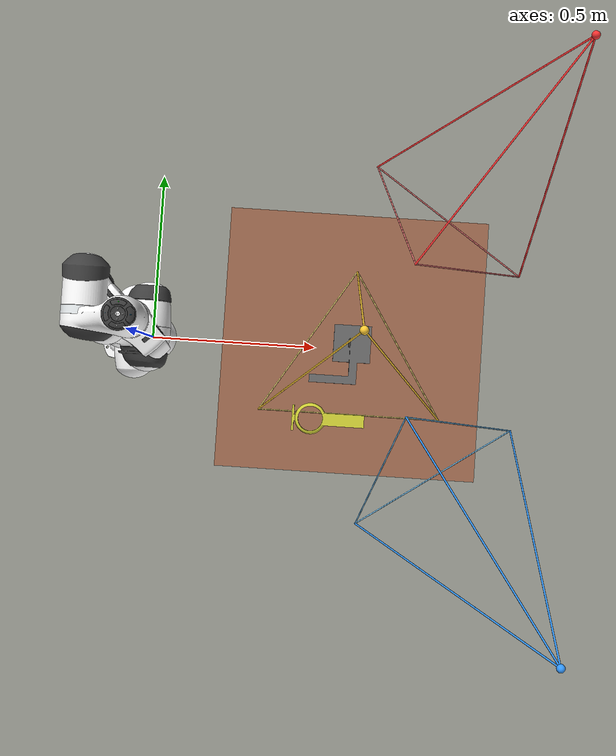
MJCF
<?xml version="1.0" ?>
<mujoco model="panda">

  <compiler angle="radian" meshdir="franka_emika_panda/assets"/>

  <default>

    <default class="panda">

      <material shininess="0.25"/>

      <joint range="-2.8973 2.8973" armature="0.1" damping="1"/>

      <general ctrlrange="-2.8973 2.8973" forcerange="-100 100" biastype="affine" biasprm="0 -1"/>

      <default class="finger">

        <joint type="slide" range="0 0.04"/>

      </default>

      <default class="visual">

        <geom type="mesh" contype="0" conaffinity="0" group="2"/>

      </default>

      <default class="collision">

        <geom type="mesh" contype="1" conaffinity="1" group="3"/>

        <default class="primitive_collision">

          <geom type="box" solref="0.01" solimp="0.99 0.995 0.01"/>

          <default class="fingertip_pad_collision_1">

            <geom size="0.011 0.0075 0.01"/>

          </default>

          <default class="fingertip_pad_collision_2">

            <geom size="0.011 0.0044 0.0019"/>

          </default>

          <default class="fingertip_pad_collision_3">

            <geom size="0.00875 0.0035 0.01175"/>

          </default>

          <default class="fingertip_pad_collision_4">

            <geom size="0.00875 0.0076 0.00825" conaffinity="3"/>

          </default>

        </default>

      </default>

    </default>

  </default>

  <asset>

    <material name="white" class="panda"/>

    <material name="off_white" class="panda" rgba="0.901961 0.921569 0.929412 1"/>

    <material name="black" class="panda" rgba="0.25 0.25 0.25 1"/>

    <material name="green" class="panda" rgba="0 1 0 1"/>

    <material name="light_blue" class="panda" rgba="0.039216 0.541176 0.780392 1"/>

    <mesh name="maze_mesh" content_type="model/obj" file="Basic_Model_EUD-Body.obj" scale="0.001 0.001 0.001"/>

    <mesh name="stick_mesh" content_type="model/obj" file="Basic_Holder_Model_EUD-Body001.obj" scale="0.001 0.001 0.001"/>

    <mesh name="link0_c" content_type="model/stl" file="link0.stl"/>

    <mesh name="link1_c" content_type="model/stl" file="link1.stl"/>

    <mesh name="link2_c" content_type="model/stl" file="link2.stl"/>

    <mesh name="link3_c" content_type="model/stl" file="link3.stl"/>

    <mesh name="link4_c" content_type="model/stl" file="link4.stl"/>

    <mesh name="link5_c0" content_type="model/obj" file="link5_collision_0.obj"/>

    <mesh name="link5_c1" content_type="model/obj" file="link5_collision_1.obj"/>

    <mesh name="link5_c2" content_type="model/obj" file="link5_collision_2.obj"/>

    <mesh name="link6_c" content_type="model/stl" file="link6.stl"/>

    <mesh name="link7_c" content_type="model/stl" file="link7.stl"/>

    <mesh name="hand_c" content_type="model/stl" file="hand.stl"/>

    <mesh name="link0_0" content_type="model/obj" file="link0_0.obj"/>

    <mesh name="link0_1" content_type="model/obj" file="link0_1.obj"/>

    <mesh name="link0_2" content_type="model/obj" file="link0_2.obj"/>

    <mesh name="link0_3" content_type="model/obj" file="link0_3.obj"/>

    <mesh name="link0_4" content_type="model/obj" file="link0_4.obj"/>

    <mesh name="link0_5" content_type="model/obj" file="link0_5.obj"/>

    <mesh name="link0_7" content_type="model/obj" file="link0_7.obj"/>

    <mesh name="link0_8" content_type="model/obj" file="link0_8.obj"/>

    <mesh name="link0_9" content_type="model/obj" file="link0_9.obj"/>

    <mesh name="link0_10" content_type="model/obj" file="link0_10.obj"/>

    <mesh name="link0_11" content_type="model/obj" file="link0_11.obj"/>

    <mesh name="link1" content_type="model/obj" file="link1.obj"/>

    <mesh name="link2" content_type="model/obj" file="link2.obj"/>

    <mesh name="link3_0" content_type="model/obj" file="link3_0.obj"/>

    <mesh name="link3_1" content_type="model/obj" file="link3_1.obj"/>

    <mesh name="link3_2" content_type="model/obj" file="link3_2.obj"/>

    <mesh name="link3_3" content_type="model/obj" file="link3_3.obj"/>

    <mesh name="link4_0" content_type="model/obj" file="link4_0.obj"/>

    <mesh name="link4_1" content_type="model/obj" file="link4_1.obj"/>

    <mesh name="link4_2" content_type="model/obj" file="link4_2.obj"/>

    <mesh name="link4_3" content_type="model/obj" file="link4_3.obj"/>

    <mesh name="link5_0" content_type="model/obj" file="link5_0.obj"/>

    <mesh name="link5_1" content_type="model/obj" file="link5_1.obj"/>

    <mesh name="link5_2" content_type="model/obj" file="link5_2.obj"/>

    <mesh name="link6_0" content_type="model/obj" file="link6_0.obj"/>

    <mesh name="link6_1" content_type="model/obj" file="link6_1.obj"/>

    <mesh name="link6_2" content_type="model/obj" file="link6_2.obj"/>

    <mesh name="link6_3" content_type="model/obj" file="link6_3.obj"/>

    <mesh name="link6_4" content_type="model/obj" file="link6_4.obj"/>

    <mesh name="link6_5" content_type="model/obj" file="link6_5.obj"/>

    <mesh name="link6_6" content_type="model/obj" file="link6_6.obj"/>

    <mesh name="link6_7" content_type="model/obj" file="link6_7.obj"/>

    <mesh name="link6_8" content_type="model/obj" file="link6_8.obj"/>

    <mesh name="link6_9" content_type="model/obj" file="link6_9.obj"/>

    <mesh name="link6_10" content_type="model/obj" file="link6_10.obj"/>

    <mesh name="link6_11" content_type="model/obj" file="link6_11.obj"/>

    <mesh name="link6_12" content_type="model/obj" file="link6_12.obj"/>

    <mesh name="link6_13" content_type="model/obj" file="link6_13.obj"/>

    <mesh name="link6_14" content_type="model/obj" file="link6_14.obj"/>

    <mesh name="link6_15" content_type="model/obj" file="link6_15.obj"/>

    <mesh name="link6_16" content_type="model/obj" file="link6_16.obj"/>

    <mesh name="link7_0" content_type="model/obj" file="link7_0.obj"/>

    <mesh name="link7_1" content_type="model/obj" file="link7_1.obj"/>

    <mesh name="link7_2" content_type="model/obj" file="link7_2.obj"/>

    <mesh name="link7_3" content_type="model/obj" file="link7_3.obj"/>

    <mesh name="link7_4" content_type="model/obj" file="link7_4.obj"/>

    <mesh name="link7_5" content_type="model/obj" file="link7_5.obj"/>

    <mesh name="link7_6" content_type="model/obj" file="link7_6.obj"/>

    <mesh name="link7_7" content_type="model/obj" file="link7_7.obj"/>

    <mesh name="hand_0" content_type="model/obj" file="hand_0.obj"/>

    <mesh name="hand_1" content_type="model/obj" file="hand_1.obj"/>

    <mesh name="hand_2" content_type="model/obj" file="hand_2.obj"/>

    <mesh name="hand_3" content_type="model/obj" file="hand_3.obj"/>

    <mesh name="hand_4" content_type="model/obj" file="hand_4.obj"/>

    <mesh name="finger_0" content_type="model/obj" file="finger_0.obj"/>

    <mesh name="finger_1" content_type="model/obj" file="finger_1.obj"/>

  </asset>

  <worldbody>

    <body name="maze" pos="0.6 0 0.425">

      <geom name="maze_visual" type="mesh" mesh="maze_mesh" rgba="0.4 0.4 0.4 1" contype="0" conaffinity="0" group="2" mass="0"/>

      <geom name="maze_collision" type="mesh" mesh="maze_mesh" rgba="0 0 1 0" contype="1" conaffinity="1" friction="1.0 0.005 0.0001" solref="0.02 1" solimp="0.95 0.99 0.001" margin="0.004" group="3"/>

    </body>

    <body name="stick" pos="0.5 -0.2 0.70">

      <joint name="stick_free" type="free"/>

      <geom name="stick_visual" type="mesh" mesh="stick_mesh" rgba="0.8 0.8 0.2 1" contype="0" conaffinity="0" group="2" mass="0"/>

      <geom name="stick_collision" type="capsule" fromto="-0.15 0 0  0.15 0 0" size="0.01" rgba="0 0 0 0" contype="1" conaffinity="1" friction="1.2 0.01 0.0001" solref="0.01 1" solimp="0.9 0.95 0.001" margin="0.002" mass="0.2" group="3"/>

    </body>

    <geom name="ground_collision" type="plane" size="2 2 0.1" pos="0 0 0" rgba="0 0 0 0" group="3" friction="1 0.005 0.0001" solref="0.02 1" solimp="0.9 0.95 0.001"/>

    <geom name="ground_visual" type="plane" size="2 2 0.1" pos="0 0 0" rgba="0.3 0.3 0.3 1" contype="0" conaffinity="0" group="9" mass="0"/>

    <body name="table" pos="0.6 0 0.4">

      <geom type="box" size="0.35 0.35 0.02" rgba="0 0 0 0" friction="1.2 0.01 0.0001" solref="0.02 1" solimp="0.9 0.95 0.001" margin="0.002" group="3" name="table_collision"/>

      <geom type="box" size="0.35 0.35 0.02" rgba="0.6 0.4 0.3 1" contype="0" conaffinity="0" margin="0.002" group="2" mass="0" name="table_visual"/>

    </body>

    <camera name="overhead" pos="0.6 0 1.2" xyaxes="1 0 0 0 1 0"/>

    <camera name="top" pos="0.6 0 1.1" xyaxes="1 0 0 0 1 0"/>

    <camera name="front" pos="1.32 0 1.04" xyaxes="0 1 0 -0.570396 0 0.82137"/>

    <camera name="right" pos="1.08 0.7 0.96" xyaxes="-0.824729 0.565528 0 -0.287044 -0.418606 0.861611"/>

    <camera name="left" pos="1.08 -0.7 0.96" xyaxes="0.824729 0.565528 0 -0.287044 0.418606 0.861611"/>

    <!-- Top camera prism marker -->
    <geom name="camviz_top_origin" type="sphere" size="0.01" pos="0.6 0 1.1"
          rgba="1 0.8 0.2 1" contype="0" conaffinity="0" group="2"/>
    <geom name="camviz_top_ray_top" type="capsule" size="0.0022"
          fromto="0.6 0 1.1 0.6 0.189553 0.48"
          rgba="1 0.8 0.2 1" contype="0" conaffinity="0" group="2"/>
    <geom name="camviz_top_ray_bl" type="capsule" size="0.0022"
          fromto="0.6 0 1.1 0.362004 -0.189553 0.48"
          rgba="1 0.8 0.2 1" contype="0" conaffinity="0" group="2"/>
    <geom name="camviz_top_ray_br" type="capsule" size="0.0022"
          fromto="0.6 0 1.1 0.837996 -0.189553 0.48"
          rgba="1 0.8 0.2 1" contype="0" conaffinity="0" group="2"/>
    <geom name="camviz_top_edge1" type="capsule" size="0.0018"
          fromto="0.6 0.189553 0.48 0.362004 -0.189553 0.48"
          rgba="1 0.9 0.5 1" contype="0" conaffinity="0" group="2"/>
    <geom name="camviz_top_edge2" type="capsule" size="0.0018"
          fromto="0.362004 -0.189553 0.48 0.837996 -0.189553 0.48"
          rgba="1 0.9 0.5 1" contype="0" conaffinity="0" group="2"/>
    <geom name="camviz_top_edge3" type="capsule" size="0.0018"
          fromto="0.837996 -0.189553 0.48 0.6 0.189553 0.48"
          rgba="1 0.9 0.5 1" contype="0" conaffinity="0" group="2"/>

    <!-- Camera frustum markers (triangular prism style) for top/left/right coverage debugging -->
    <geom name="camviz_right_origin" type="sphere" size="0.01" pos="1.08 0.7 0.96"
          rgba="1 0.2 0.2 1" contype="0" conaffinity="0" group="2"/>
    <geom name="camviz_right_ray_top" type="capsule" size="0.0022"
          fromto="1.08 0.7 0.96 0.723485 0.180082 0.808629"
          rgba="1 0.2 0.2 1" contype="0" conaffinity="0" group="2"/>
    <geom name="camviz_right_ray_bl" type="capsule" size="0.0022"
          fromto="1.08 0.7 0.96 1.028587 0.204185 0.481987"
          rgba="1 0.2 0.2 1" contype="0" conaffinity="0" group="2"/>
    <geom name="camviz_right_ray_br" type="capsule" size="0.0022"
          fromto="1.08 0.7 0.96 0.636023 0.473372 0.481987"
          rgba="1 0.2 0.2 1" contype="0" conaffinity="0" group="2"/>
    <geom name="camviz_right_edge1" type="capsule" size="0.0018"
          fromto="0.723485 0.180082 0.808629 1.028587 0.204185 0.481987"
          rgba="1 0.5 0.5 1" contype="0" conaffinity="0" group="2"/>
    <geom name="camviz_right_edge2" type="capsule" size="0.0018"
          fromto="1.028587 0.204185 0.481987 0.636023 0.473372 0.481987"
          rgba="1 0.5 0.5 1" contype="0" conaffinity="0" group="2"/>
    <geom name="camviz_right_edge3" type="capsule" size="0.0018"
          fromto="0.636023 0.473372 0.481987 0.723485 0.180082 0.808629"
          rgba="1 0.5 0.5 1" contype="0" conaffinity="0" group="2"/>

    <geom name="camviz_left_origin" type="sphere" size="0.01" pos="1.08 -0.7 0.96"
          rgba="0.2 0.6 1 1" contype="0" conaffinity="0" group="2"/>
    <geom name="camviz_left_ray_top" type="capsule" size="0.0022"
          fromto="1.08 -0.7 0.96 0.723485 -0.180082 0.808629"
          rgba="0.2 0.6 1 1" contype="0" conaffinity="0" group="2"/>
    <geom name="camviz_left_ray_bl" type="capsule" size="0.0022"
          fromto="1.08 -0.7 0.96 0.636023 -0.473372 0.481987"
          rgba="0.2 0.6 1 1" contype="0" conaffinity="0" group="2"/>
    <geom name="camviz_left_ray_br" type="capsule" size="0.0022"
          fromto="1.08 -0.7 0.96 1.028587 -0.204185 0.481987"
          rgba="0.2 0.6 1 1" contype="0" conaffinity="0" group="2"/>
    <geom name="camviz_left_edge1" type="capsule" size="0.0018"
          fromto="0.723485 -0.180082 0.808629 0.636023 -0.473372 0.481987"
          rgba="0.5 0.8 1 1" contype="0" conaffinity="0" group="2"/>
    <geom name="camviz_left_edge2" type="capsule" size="0.0018"
          fromto="0.636023 -0.473372 0.481987 1.028587 -0.204185 0.481987"
          rgba="0.5 0.8 1 1" contype="0" conaffinity="0" group="2"/>
    <geom name="camviz_left_edge3" type="capsule" size="0.0018"
          fromto="1.028587 -0.204185 0.481987 0.723485 -0.180082 0.808629"
          rgba="0.5 0.8 1 1" contype="0" conaffinity="0" group="2"/>

    <light name="top" pos="0 0 2" dir="0 0 -1" mode="trackcom"/>

    <body name="link0" childclass="panda">

      <inertial pos="-0.041018 -0.00014 0.049974" quat="0.00630474 0.751245 0.00741774 0.659952" mass="0.629769" diaginertia="0.00430465 0.00387984 0.00313051"/>

      <geom class="visual" material="off_white" mesh="link0_0"/>

      <geom class="visual" material="black" mesh="link0_1"/>

      <geom class="visual" material="off_white" mesh="link0_2"/>

      <geom class="visual" material="black" mesh="link0_3"/>

      <geom class="visual" material="off_white" mesh="link0_4"/>

      <geom class="visual" material="black" mesh="link0_5"/>

      <geom class="visual" material="white" mesh="link0_7"/>

      <geom class="visual" material="white" mesh="link0_8"/>

      <geom class="visual" material="black" mesh="link0_9"/>

      <geom class="visual" material="off_white" mesh="link0_10"/>

      <geom class="visual" material="white" mesh="link0_11"/>

      <geom class="collision" mesh="link0_c"/>

      <body name="link1" pos="0 0 0.333">

        <inertial pos="0.003875 0.002081 -0.04762" quat="0.711549 0.00634377 -0.0131124 0.702485" mass="4.97068" diaginertia="0.707137 0.703435 0.00852456"/>

        <joint name="joint1" pos="0 0 0" axis="0 0 1" damping="40"/>

        <geom class="visual" material="white" mesh="link1"/>

        <geom class="collision" mesh="link1_c"/>

        <body name="link2" quat="0.707107 -0.707107 0 0">

          <inertial pos="-0.003141 -0.02872 0.003495" quat="-0.168175 0.828366 -0.122878 0.520027" mass="0.646926" diaginertia="0.0310326 0.0283001 0.00273425"/>

          <joint name="joint2" pos="0 0 0" axis="0 0 1" range="-1.7628 1.7628" damping="40"/>

          <geom class="visual" material="white" mesh="link2"/>

          <geom class="collision" mesh="link2_c"/>

          <body name="link3" pos="0 -0.316 0" quat="0.707107 0.707107 0 0">

            <inertial pos="0.027518 0.039252 -0.066502" quat="0.662769 -0.00678331 0.252053 0.705096" mass="3.2286" diaginertia="0.0415014 0.0414793 0.00124635"/>

            <joint name="joint3" pos="0 0 0" axis="0 0 1" damping="40"/>

            <geom class="visual" material="white" mesh="link3_0"/>

            <geom class="visual" material="white" mesh="link3_1"/>

            <geom class="visual" material="white" mesh="link3_2"/>

            <geom class="visual" material="black" mesh="link3_3"/>

            <geom class="collision" mesh="link3_c"/>

            <body name="link4" pos="0.0825 0 0" quat="0.707107 0.707107 0 0">

              <inertial pos="-0.05317 0.104419 0.027454" quat="0.65058 0.529822 -0.0962034 0.535518" mass="3.5879" diaginertia="0.0349596 0.0281483 0.0106201"/>

              <joint name="joint4" pos="0 0 0" axis="0 0 1" range="-3.0718 -0.0698" damping="40"/>

              <geom class="visual" material="white" mesh="link4_0"/>

              <geom class="visual" material="white" mesh="link4_1"/>

              <geom class="visual" material="black" mesh="link4_2"/>

              <geom class="visual" material="white" mesh="link4_3"/>

              <geom class="collision" mesh="link4_c"/>

              <body name="link5" pos="-0.0825 0.384 0" quat="0.707107 -0.707107 0 0">

                <inertial pos="-0.011953 0.041065 -0.038437" quat="0.987313 -0.0121954 0.0719187 -0.141037" mass="1.22595" diaginertia="0.0367625 0.0288531 0.00803437"/>

                <joint name="joint5" pos="0 0 0" axis="0 0 1" damping="2"/>

                <geom class="visual" material="black" mesh="link5_0"/>

                <geom class="visual" material="white" mesh="link5_1"/>

                <geom class="visual" material="white" mesh="link5_2"/>

                <geom class="collision" mesh="link5_c0"/>

                <geom class="collision" mesh="link5_c1"/>

                <geom class="collision" mesh="link5_c2"/>

                <body name="link6" quat="0.707107 0.707107 0 0">

                  <inertial pos="0.060149 -0.014117 -0.010517" quat="0.101075 0.59332 0.0287227 0.798079" mass="1.66656" diaginertia="0.00584276 0.00431037 0.00159787"/>

                  <joint name="joint6" pos="0 0 0" axis="0 0 1" range="-0.0175 3.7525" damping="2"/>

                  <geom class="visual" material="off_white" mesh="link6_0"/>

                  <geom class="visual" material="white" mesh="link6_1"/>

                  <geom class="visual" material="black" mesh="link6_2"/>

                  <geom class="visual" material="white" mesh="link6_3"/>

                  <geom class="visual" material="white" mesh="link6_4"/>

                  <geom class="visual" material="white" mesh="link6_5"/>

                  <geom class="visual" material="white" mesh="link6_6"/>

                  <geom class="visual" material="light_blue" mesh="link6_7"/>

                  <geom class="visual" material="light_blue" mesh="link6_8"/>

                  <geom class="visual" material="black" mesh="link6_9"/>

                  <geom class="visual" material="black" mesh="link6_10"/>

                  <geom class="visual" material="white" mesh="link6_11"/>

                  <geom class="visual" material="green" mesh="link6_12"/>

                  <geom class="visual" material="white" mesh="link6_13"/>

                  <geom class="visual" material="black" mesh="link6_14"/>

                  <geom class="visual" material="black" mesh="link6_15"/>

                  <geom class="visual" material="white" mesh="link6_16"/>

                  <geom class="collision" mesh="link6_c"/>

                  <body name="link7" pos="0.088 0 0" quat="0.707107 0.707107 0 0">

                    <inertial pos="0.010517 -0.004252 0.061597" quat="0.992939 -0.0762041 0.0733595 -0.0537067" mass="0.735522" diaginertia="0.0127345 0.0101055 0.00451803"/>

                    <joint name="joint7" pos="0 0 0" axis="0 0 1" damping="2"/>

                    <geom class="visual" material="white" mesh="link7_0"/>

                    <geom class="visual" material="black" mesh="link7_1"/>

                    <geom class="visual" material="black" mesh="link7_2"/>

                    <geom class="visual" material="black" mesh="link7_3"/>

                    <geom class="visual" material="black" mesh="link7_4"/>

                    <geom class="visual" material="black" mesh="link7_5"/>

                    <geom class="visual" material="black" mesh="link7_6"/>

                    <geom class="visual" material="white" mesh="link7_7"/>

                    <geom class="collision" mesh="link7_c"/>

                    <body name="hand" pos="0 0 0.107" quat="0.92388 0 0 -0.382683">

                      <inertial pos="-0.01 0 0.03" mass="0.73" diaginertia="0.001 0.0025 0.0017"/>

                      <geom class="visual" material="off_white" mesh="hand_0"/>

                      <geom class="visual" material="black" mesh="hand_1"/>

                      <geom class="visual" material="black" mesh="hand_2"/>

                      <geom class="visual" material="white" mesh="hand_3"/>

                      <geom class="visual" material="off_white" mesh="hand_4"/>

                      <geom class="collision" mesh="hand_c"/>

                      <geom name="hand_capsule" class="collision" size="0.04 0.06" pos="0 0 0.03" quat="0.707107 0.707107 0 0" type="capsule" conaffinity="1"/>

                      <site name="gripper" pos="0 0 0.1"/>
                      <camera name="wrist" pos="0 0 0.08" euler="3.14159 0 0"/>

                      <body name="left_finger" pos="0 0 0.0584">

                        <inertial pos="0 0 0" mass="0.015" diaginertia="2.375e-06 2.375e-06 7.5e-07"/>

                        <joint name="finger_joint1" class="finger" pos="0 0 0" axis="0 1 0" damping="10"/>

                        <geom class="visual" material="off_white" mesh="finger_0"/>

                        <geom class="visual" material="black" mesh="finger_1"/>

                        <geom class="collision" mesh="finger_0"/>

                        <geom class="fingertip_pad_collision_1" pos="0 0.0185 0.011"/>

                        <geom class="fingertip_pad_collision_2" pos="0 0.0068 0.0022"/>

                        <geom class="fingertip_pad_collision_3" pos="0 0.0159 0.02835" quat="0.970143 0.242536 0 0"/>

                        <geom name="left_finger_pad" class="fingertip_pad_collision_4" pos="0 0.00758 0.04525"/>

                      </body>

                      <body name="right_finger" pos="0 0 0.0584" quat="0 0 0 1">

                        <inertial pos="0 0 0" mass="0.015" diaginertia="2.375e-06 2.375e-06 7.5e-07"/>

                        <joint name="finger_joint2" class="finger" pos="0 0 0" axis="0 1 0" damping="10"/>

                        <geom class="visual" material="off_white" mesh="finger_0"/>

                        <geom class="visual" material="black" mesh="finger_1"/>

                        <geom class="collision" mesh="finger_0"/>

                        <geom class="fingertip_pad_collision_1" pos="0 0.0185 0.011"/>

                        <geom class="fingertip_pad_collision_2" pos="0 0.0068 0.0022"/>

                        <geom class="fingertip_pad_collision_3" pos="0 0.0159 0.02835" quat="0.970143 0.242536 0 0"/>

                        <geom name="right_finger_pad" class="fingertip_pad_collision_4" pos="0 0.00758 0.04525"/>

                      </body>

                    </body>

                  </body>

                </body>

              </body>

            </body>

          </body>

        </body>

      </body>

    </body>

  </worldbody>

  <contact>

    <exclude body1="link0" body2="link1"/>

  </contact>

  <equality>

    <joint joint1="finger_joint1" joint2="finger_joint2" polycoef="0 1 0 0 0" solref="0.005" solimp="0.95 0.99"/>

  </equality>

  <actuator>

    <general name="actuator1" class="panda" joint="joint1" gainprm="1000" biasprm="0 -1000 -20"/>

    <general name="actuator2" class="panda" joint="joint2" ctrlrange="-1.7628 1.7628" gainprm="1000" biasprm="0 -1000 -20"/>

    <general name="actuator3" class="panda" joint="joint3" gainprm="750" biasprm="0 -750 -4"/>

    <general name="actuator4" class="panda" joint="joint4" ctrlrange="-3.0718 -0.0698" gainprm="750" biasprm="0 -750 -4"/>

    <general name="actuator5" class="panda" joint="joint5" forcerange="-12 12" gainprm="300" biasprm="0 -300 -2"/>

    <general name="actuator6" class="panda" joint="joint6" ctrlrange="-0.0175 3.7525" forcerange="-12 12" gainprm="300" biasprm="0 -300 -2"/>

    <general name="actuator7" class="panda" joint="joint7" forcerange="-12 12" gainprm="300" biasprm="0 -300 -2"/>

    <general name="actuator8" class="panda" joint="finger_joint1" ctrlrange="0 0.04" forcerange="-200 200" gainprm="350" biasprm="0 -350 -10"/>

  </actuator>

</mujoco>
